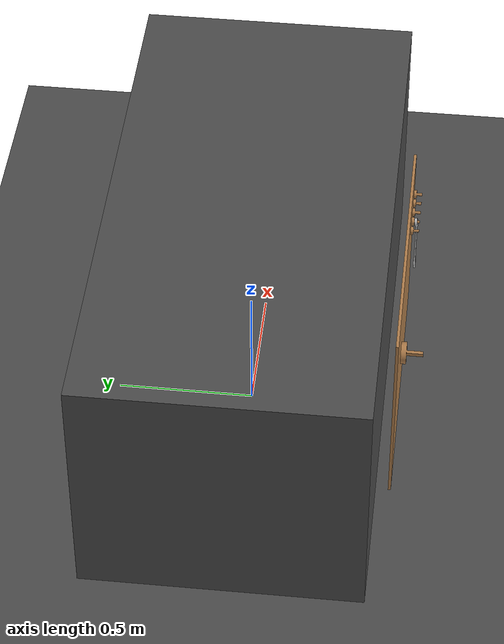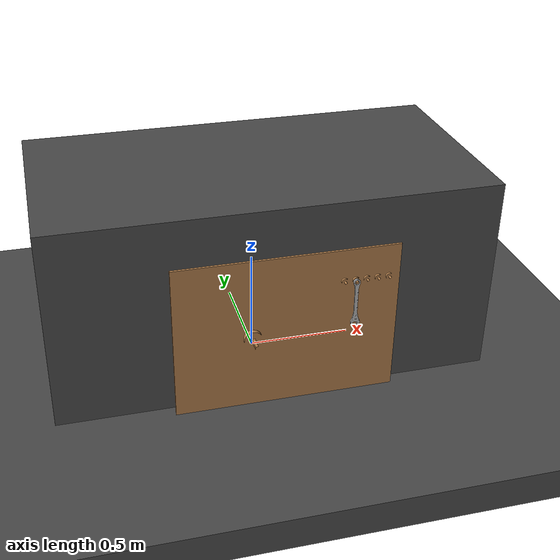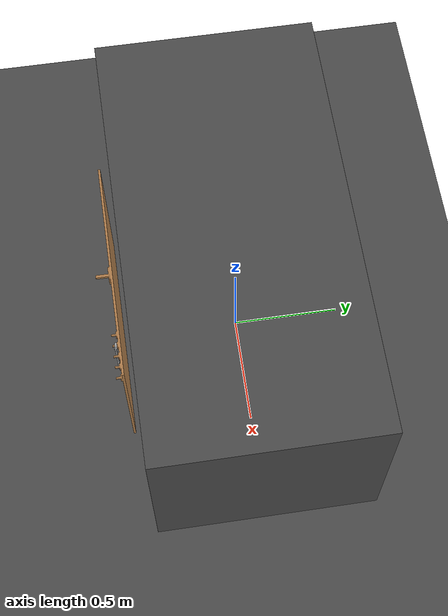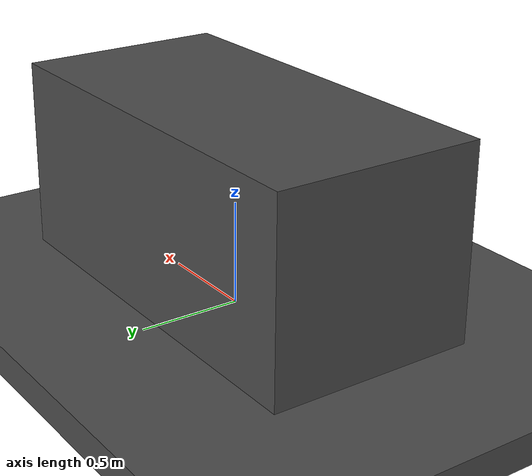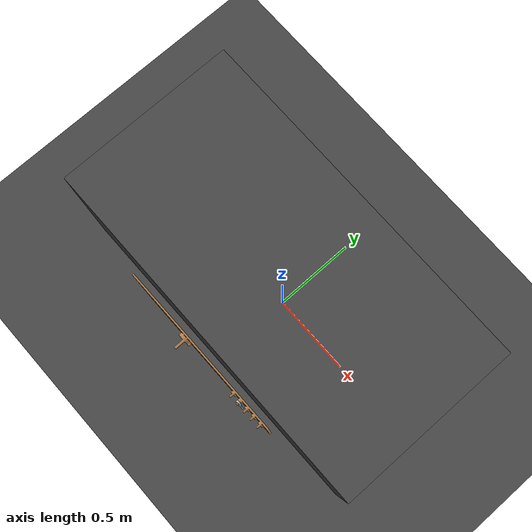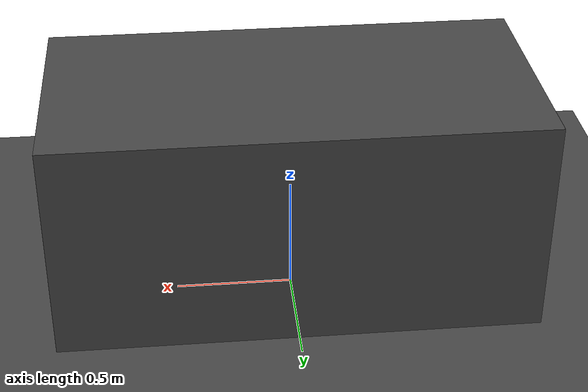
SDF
<sdf version="1.4">
 <world name="default">
  <light name="sun" type="directional">
   <pose>0 0 10 0 -0 0</pose>
   <diffuse>0.8 0.8 0.8 1</diffuse>
   <specular>0.2 0.2 0.2 1</specular>
   <attenuation>
    <range>1000</range>
    <constant>0.9</constant>
    <linear>0.01</linear>
    <quadratic>0.001</quadratic>
   </attenuation>
   <direction>-0.5 0.1 -0.9</direction>
  </light>
  <model name="ground_plane">
   <static>1</static>
   <link name="link">
    <collision name="collision">
     <geometry><plane><normal>0 0 1</normal><size>100 100</size></plane></geometry>
     <surface><friction><ode><mu>100</mu><mu2>50</mu2></ode></friction></surface>
    </collision>
    <visual name="visual">
     <cast_shadows>0</cast_shadows>
     <geometry><plane><normal>0 0 1</normal><size>100 100</size></plane></geometry>
     <material>
      <script><uri>file://media/materials/scripts/gazebo.material</uri><name>Gazebo/Grey</name></script>
     </material>
    </visual>
    <velocity_decay><linear>0</linear><angular>0</angular></velocity_decay>
   </link>
  </model>
  <physics type="ode">
   <max_step_size>0.001</max_step_size>
   <real_time_factor>1</real_time_factor>
   <real_time_update_rate>1000</real_time_update_rate>
   <gravity>0 0 -9.8</gravity>
  </physics>
  <scene><ambient>0.4 0.4 0.4 1</ambient><background>0.7 0.7 0.7 1</background><shadows>1</shadows></scene>
  <spherical_coordinates>
   <surface_model>EARTH_WGS84</surface_model>
   <latitude_deg>0</latitude_deg>
   <longitude_deg>0</longitude_deg>
   <elevation>0</elevation>
   <heading_deg>0</heading_deg>
  </spherical_coordinates>
  <model name="unit_box_1">
   <static>1</static>
   <pose>0 0 0.5 0 -0 0</pose>
   <link name="link">
    <inertial>
     <mass>1</mass>
     <inertia><ixx>1</ixx><ixy>0</ixy><ixz>0</ixz><iyy>1</iyy><iyz>0</iyz><izz>1</izz></inertia>
    </inertial>
    <collision name="collision"><geometry><box><size>2 1 1</size></box></geometry></collision>
    <visual name="visual">
     <geometry><box><size>2 1 1</size></box></geometry>
     <material>
      <script>
       <uri>model://challenge_1_plane/materials/scripts</uri>
       <uri>model://challenge_1_plane/materials/textures</uri>
       <name>vrc/asphalt</name>
      </script>
     </material>
    </visual>
    <velocity_decay><linear>0</linear><angular>0</angular></velocity_decay>
   </link>
   <static>0</static>
  </model>
  <model name="wrench_board">
   <static>1</static>
   <link name="link">
    <pose>0 0 0.75 1.5708 -0 0</pose>
    <inertial>
     <mass>1.0762</mass>
     <inertia>
      <ixx>0.000708</ixx>
      <ixy>-7e-06</ixy>
      <ixz>0</ixz>
      <iyy>0.001267</iyy>
      <iyz>0</iyz>
      <izz>0.001974</izz>
     </inertia>
    </inertial>
    <visual name="visual">
     <geometry>
      <mesh><scale>0.001 0.001 0.001</scale><uri>model://wrench_board/meshes/MBZIRC_WrenchBoard.dae</uri></mesh>
     </geometry>
     <material>
      <script>
       <uri>model://wrench_board/materials/scripts</uri>
       <uri>model://wrench_board/materials/textures</uri>
       <name>vrc/wood_board</name>
      </script>
     </material>
    </visual>
    <collision name="collision">
     <geometry>
      <mesh><scale>0.001 0.001 0.001</scale><uri>model://wrench_board/meshes/MBZIRC_WrenchBoard.dae</uri></mesh>
     </geometry>
    </collision>
    <velocity_decay><linear>0</linear><angular>0</angular></velocity_decay>
   </link>
   <pose>-0.4 -0.54508 -0 0 -0 0</pose>
  </model>
  <model name="challenge_1_plane">
   <static>1</static>
   <link name="link">
    <collision name="collision"><geometry><box><size>140 60 0.15</size></box></geometry></collision>
    <visual name="visual">
     <cast_shadows>0</cast_shadows>
     <geometry><box><size>140 60 0.15</size></box></geometry>
     <material>
      <script>
       <uri>model://challenge_1_plane/materials/scripts</uri>
       <uri>model://challenge_1_plane/materials/textures</uri>
       <name>vrc/asphalt</name>
      </script>
     </material>
    </visual>
    <velocity_decay><linear>0</linear><angular>0</angular></velocity_decay>
   </link>
   <pose>-0.557002 -7.67944 0 0 -0 0</pose>
  </model>
  <model name="wrench_2">
   <static>0</static>
   <link name="link">
    <pose>0 0 0 3.14159 -1.57059 3.14159</pose>
    <inertial>
     <mass>0.3</mass>
     <inertia>
      <ixx>7.83668</ixx>
      <ixy>-3.54875</ixy>
      <ixz>-2.02334</ixz>
      <iyy>585.166</iyy>
      <iyz>-0.005975</iyz>
      <izz>578.228</izz>
     </inertia>
    </inertial>
    <visual name="visual">
     <geometry>
      <mesh><scale>0.012 0.012 0.012</scale><uri>model://5_8_wrench/meshes/5_8_wrench.stl</uri></mesh>
     </geometry>
    </visual>
    <collision name="collision">
     <geometry>
      <mesh><scale>0.012 0.012 0.012</scale><uri>model://5_8_wrench/meshes/5_8_wrench.stl</uri></mesh>
     </geometry>
    </collision>
    <velocity_decay><linear>0</linear><angular>0</angular></velocity_decay>
   </link>
   <pose>0.321862 -0.574561 0.449445 3e-06 6e-06 0.000208</pose>
  </model>
 </world>
</sdf>
